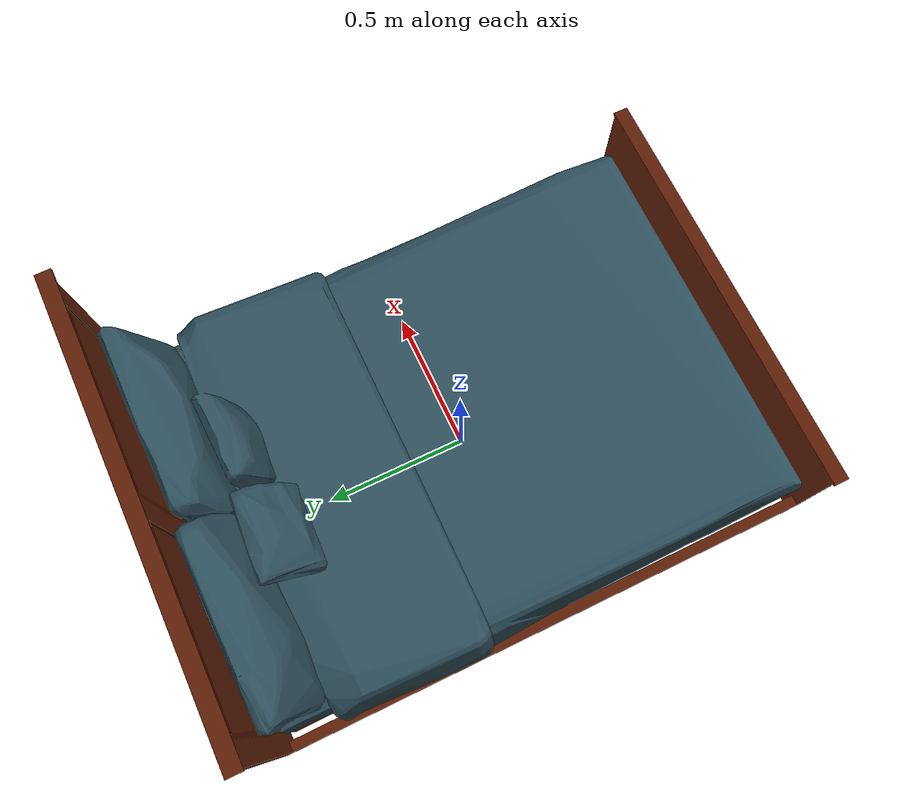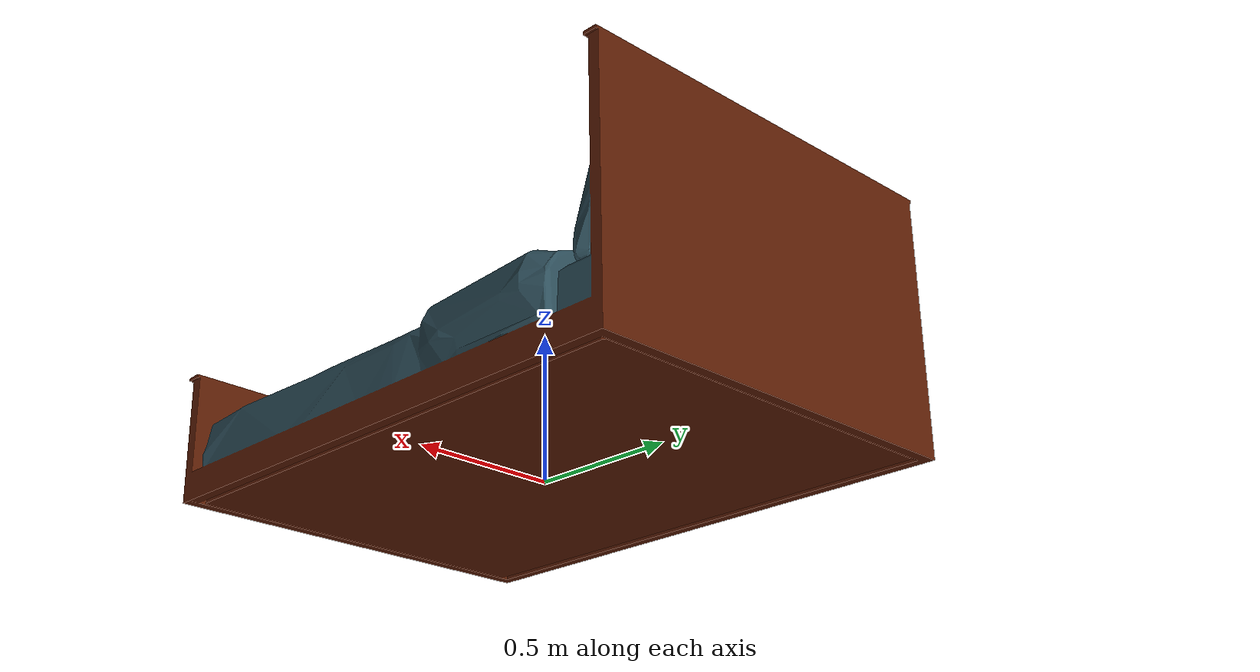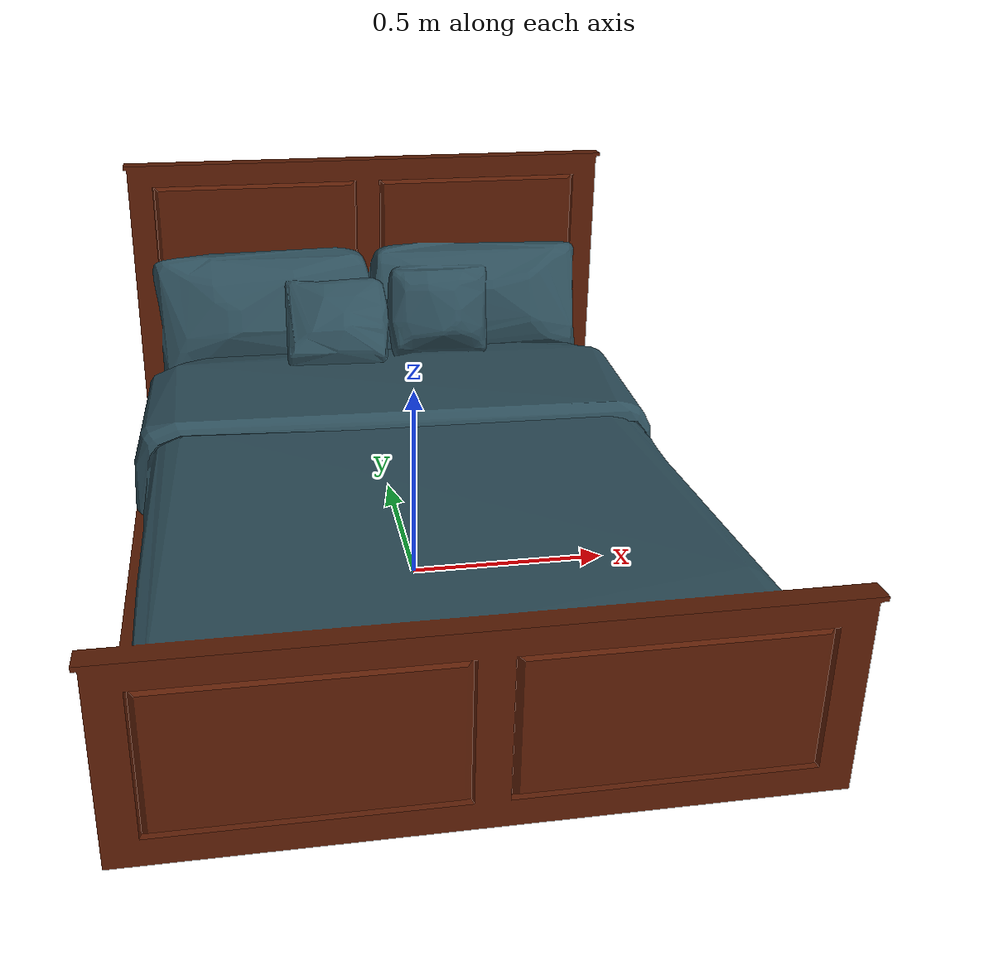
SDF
<?xml version="1.0" ?>
<sdf version="1.5">
  <model name="bed_fullsize">
    <link name="link">
      <pose>0 0 0 0 0 0</pose>
      <collision name="collision">
        <geometry>
          <mesh>
            <uri>model://bed_fullsize/meshes/model.dae</uri>
          </mesh>
        </geometry>
      </collision>
      <visual name="visual">
        <geometry>
          <mesh>
            <uri>model://bed_fullsize/meshes/model.dae</uri>
          </mesh>
        </geometry>
      </visual>
    </link>
    <static>1</static>
  </model>
</sdf>
